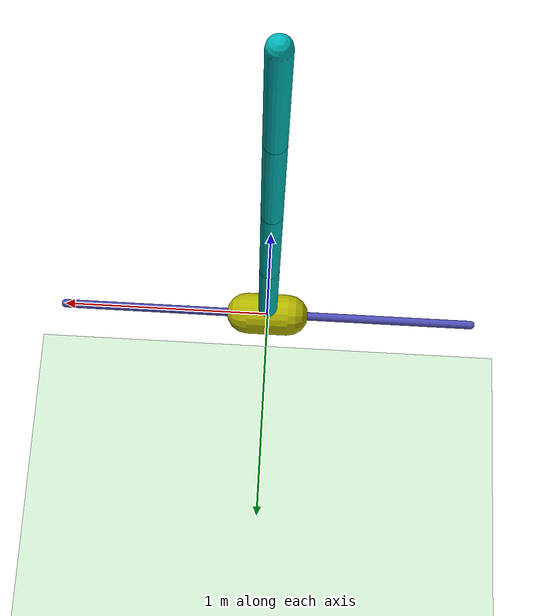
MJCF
<!--

    수치 미분법 Runge Kutta4 이용
    timestep은 10ms이며, 일반적으로 제어문제에서는 제어주기가 (frequency)가 짧을 수록 정밀도가 높다.
    하지만 학습 관점에서는 큼직 큼직하게 가져가는게 좋으므로, 제어 학습 문제는 이를 적당히 조절하는게 좋다.

   -->

<mujoco model="cartpole">
  <compiler coordinate="local" inertiafromgeom="true"/>
  <custom>
    <numeric data="2" name="frame_skip"/>
  </custom>
  <default>
    <joint damping="0.05"/>
    <geom contype="0" friction="1 0.1 0.1" rgba="0.7 0.7 0 1"/>
  </default>
  <option gravity="1e-5 0 -9.81" integrator="RK4" timestep="0.01"/>

  <size nstack="3000"/>
  <worldbody>
    <geom name="floor" pos="0 0 -3.0" rgba="0.8 0.9 0.8 1" size="40 40 40" type="plane"/>
    <geom name="rail" pos="0 0 0" quat="0.707 0 0.707 0" rgba="0.3 0.3 0.7 1" size="0.02 1" type="capsule"/>
    <body name="cart" pos="0 0 0">
      <joint axis="1 0 0" limited="true" margin="0.01" name="slider" pos="0 0 0" range="-1 1" type="slide"/>
      <geom name="cart" pos="0 0 0" quat="0.707 0 0.707 0" size="0.1 0.1" type="capsule"/>

      <body name="pole" pos="0 0 0">
        <joint axis="0 1 0" name="hinge" pos="0 0 0" type="hinge"/>
        <geom fromto="0 0 0 0 0 0.6" name="cpole" rgba="0 0.7 0.7 1" size="0.045 0.3" type="capsule"/>

        <body name="pole2" pos="0 0 0.6">
          <joint axis="0 1 0" name="hinge2" pos="0 0 0" type="hinge"/>
          <geom fromto="0 0 0 0 0 0.6" name="cpole2" rgba="0 0.7 0.7 1" size="0.045 0.3" type="capsule"/>

          <body name="pole3" pos="0 0 0.6">
            <joint axis="0 1 0" name="hinge3" pos="0 0 0" type="hinge"/>
            <geom fromto="0 0 0 0 0 0.6" name="cpole3" rgba="0 0.7 0.7 1" size="0.045 0.3" type="capsule"/>

            <body name="pole4" pos="0 0 0.6">
              <joint axis="0 1 0" name="hinge4" pos="0 0 0" type="hinge"/>
              <geom fromto="0 0 0 0 0 0.6" name="cpole4" rgba="0 0.7 0.7 1" size="0.045 0.3" type="capsule"/>
              <!--site 위치로 reward 계산하고 있어서, 이거 빼면 안돌아간다.
              다른 방식으로 reward 계산할거면 reward function 바꾸자-->
              <site name="tip" pos="0 0 0.6" size="0.01 0.01"/>
            </body>

          </body>

        </body>

      </body>

    </body>
  </worldbody>
  <actuator>
    <motor ctrllimited="true" ctrlrange="-1 1" gear="500" joint="slider" name="slide"/>
  </actuator>
</mujoco>
